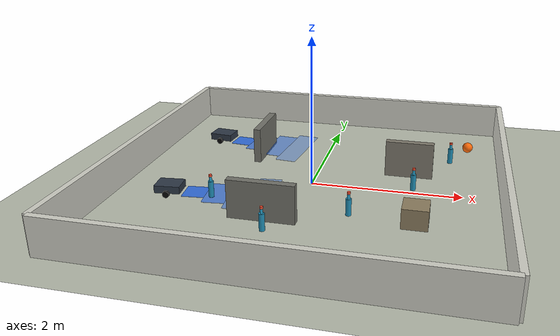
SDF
<?xml version="1.0" ?>
<sdf version="1.6">
  <world name="lightweight_targets">
    <plugin name="gazebo_ros_init" filename="libgazebo_ros_init.so"/>
    <plugin name="gazebo_ros_factory" filename="libgazebo_ros_factory.so"/>

    <physics name="fast_ode" type="ode">
      <max_step_size>0.004</max_step_size>
      <real_time_update_rate>250</real_time_update_rate>
    </physics>

    <scene>
      <ambient>0.72 0.72 0.72 1</ambient>
      <background>0.78 0.84 0.88 1</background>
      <shadows>false</shadows>
    </scene>

    <gui fullscreen="0">
      <!-- Default Gazebo view: overhead map-style camera for touchpad-friendly inspection. -->
      <camera name="user_camera">
        <pose>0 0 8 0 1.570796 0</pose>
        <view_controller>orbit</view_controller>
        <projection_type>orthographic</projection_type>
      </camera>
    </gui>

    <light name="sun" type="directional">
      <pose>0 0 5 0 0 0</pose>
      <diffuse>0.9 0.9 0.85 1</diffuse>
      <specular>0.1 0.1 0.1 1</specular>
      <direction>-0.5 0.2 -1.0</direction>
    </light>

    <model name="matte_floor">
      <static>true</static>
      <link name="link">
        <collision name="collision">
          <geometry>
            <plane>
              <normal>0 0 1</normal>
              <size>8 6</size>
            </plane>
          </geometry>
        </collision>
        <visual name="visual">
          <geometry>
            <plane>
              <normal>0 0 1</normal>
              <size>8 6</size>
            </plane>
          </geometry>
          <material>
            <ambient>0.72 0.74 0.68 1</ambient>
            <diffuse>0.72 0.74 0.68 1</diffuse>
          </material>
        </visual>
      </link>
    </model>

    <model name="north_wall">
      <static>true</static>
      <pose>0 2.5 0.25 0 0 0</pose>
      <link name="link">
        <collision name="collision">
          <geometry><box><size>5.0 0.08 0.5</size></box></geometry>
        </collision>
        <visual name="visual">
          <geometry><box><size>5.0 0.08 0.5</size></box></geometry>
          <material><ambient>0.82 0.82 0.78 1</ambient><diffuse>0.82 0.82 0.78 1</diffuse></material>
        </visual>
      </link>
    </model>

    <model name="south_wall">
      <static>true</static>
      <pose>0 -2.5 0.25 0 0 0</pose>
      <link name="link">
        <collision name="collision">
          <geometry><box><size>5.0 0.08 0.5</size></box></geometry>
        </collision>
        <visual name="visual">
          <geometry><box><size>5.0 0.08 0.5</size></box></geometry>
          <material><ambient>0.82 0.82 0.78 1</ambient><diffuse>0.82 0.82 0.78 1</diffuse></material>
        </visual>
      </link>
    </model>

    <model name="east_wall">
      <static>true</static>
      <pose>2.5 0 0.25 0 0 0</pose>
      <link name="link">
        <collision name="collision">
          <geometry><box><size>0.08 5.0 0.5</size></box></geometry>
        </collision>
        <visual name="visual">
          <geometry><box><size>0.08 5.0 0.5</size></box></geometry>
          <material><ambient>0.82 0.82 0.78 1</ambient><diffuse>0.82 0.82 0.78 1</diffuse></material>
        </visual>
      </link>
    </model>

    <model name="west_wall">
      <static>true</static>
      <pose>-2.5 0 0.25 0 0 0</pose>
      <link name="link">
        <collision name="collision">
          <geometry><box><size>0.08 5.0 0.5</size></box></geometry>
        </collision>
        <visual name="visual">
          <geometry><box><size>0.08 5.0 0.5</size></box></geometry>
          <material><ambient>0.82 0.82 0.78 1</ambient><diffuse>0.82 0.82 0.78 1</diffuse></material>
        </visual>
      </link>
    </model>

    <model name="obstacle_shelf_1">
      <static>true</static>
      <pose>-0.95 0.95 0.25 0 0 0</pose>
      <link name="link">
        <collision name="collision">
          <geometry><box><size>0.10 0.80 0.5</size></box></geometry>
        </collision>
        <visual name="visual">
          <geometry><box><size>0.10 0.80 0.5</size></box></geometry>
          <material><ambient>0.45 0.45 0.42 1</ambient><diffuse>0.45 0.45 0.42 1</diffuse></material>
        </visual>
      </link>
    </model>

    <model name="obstacle_shelf_2">
      <static>true</static>
      <pose>-0.35 -1.15 0.25 0 0 0</pose>
      <link name="link">
        <collision name="collision">
          <geometry><box><size>0.85 0.10 0.5</size></box></geometry>
        </collision>
        <visual name="visual">
          <geometry><box><size>0.85 0.10 0.5</size></box></geometry>
          <material><ambient>0.45 0.45 0.42 1</ambient><diffuse>0.45 0.45 0.42 1</diffuse></material>
        </visual>
      </link>
    </model>

    <model name="obstacle_counter">
      <static>true</static>
      <pose>1.25 0.55 0.25 0 0 0</pose>
      <link name="link">
        <collision name="collision">
          <geometry><box><size>0.65 0.10 0.5</size></box></geometry>
        </collision>
        <visual name="visual">
          <geometry><box><size>0.65 0.10 0.5</size></box></geometry>
          <material><ambient>0.50 0.48 0.43 1</ambient><diffuse>0.50 0.48 0.43 1</diffuse></material>
        </visual>
      </link>
    </model>

    <model name="obstacle_low_box">
      <static>true</static>
      <pose>1.45 -0.85 0.13 0 0 0</pose>
      <link name="link">
        <collision name="collision">
          <geometry><box><size>0.32 0.32 0.26</size></box></geometry>
        </collision>
        <visual name="visual">
          <geometry><box><size>0.32 0.32 0.26</size></box></geometry>
          <material><ambient>0.56 0.50 0.38 1</ambient><diffuse>0.56 0.50 0.38 1</diffuse></material>
        </visual>
      </link>
    </model>

    <model name="sports_ball_target">
      <static>true</static>
      <pose>2.05 1.65 0.075 0 0 0</pose>
      <link name="ball">
        <collision name="collision">
          <geometry><sphere><radius>0.075</radius></sphere></geometry>
        </collision>
        <collision name="lidar_collision">
          <pose>0 0 0.105 0 0 0</pose>
          <geometry><sphere><radius>0.11</radius></sphere></geometry>
        </collision>
        <visual name="visual">
          <geometry><sphere><radius>0.075</radius></sphere></geometry>
          <material><ambient>1.0 0.42 0.04 1</ambient><diffuse>1.0 0.42 0.04 1</diffuse></material>
        </visual>
      </link>
    </model>

    <model name="heuristic_bottle_1">
      <static>true</static>
      <pose>-1.15 -0.75 0 0 0 0</pose>
      <link name="bottle">
        <collision name="body_collision">
          <pose>0 0 0.135 0 0 0</pose>
          <geometry><cylinder><radius>0.035</radius><length>0.22</length></cylinder></geometry>
        </collision>
        <collision name="neck_collision">
          <pose>0 0 0.275 0 0 0</pose>
          <geometry><cylinder><radius>0.017</radius><length>0.06</length></cylinder></geometry>
        </collision>
        <visual name="body_visual">
          <pose>0 0 0.135 0 0 0</pose>
          <geometry><cylinder><radius>0.035</radius><length>0.22</length></cylinder></geometry>
          <material><ambient>0.12 0.55 0.70 1</ambient><diffuse>0.12 0.55 0.70 1</diffuse></material>
        </visual>
        <visual name="neck_visual">
          <pose>0 0 0.275 0 0 0</pose>
          <geometry><cylinder><radius>0.017</radius><length>0.06</length></cylinder></geometry>
          <material><ambient>0.15 0.62 0.78 1</ambient><diffuse>0.15 0.62 0.78 1</diffuse></material>
        </visual>
        <visual name="cap_visual">
          <pose>0 0 0.32 0 0 0</pose>
          <geometry><cylinder><radius>0.020</radius><length>0.03</length></cylinder></geometry>
          <material><ambient>0.95 0.3 0.18 1</ambient><diffuse>0.95 0.3 0.18 1</diffuse></material>
        </visual>
      </link>
    </model>

    <model name="heuristic_bottle_2">
      <static>true</static>
      <pose>-0.25 -1.45 0 0 0 0.2</pose>
      <link name="bottle">
        <collision name="body_collision">
          <pose>0 0 0.135 0 0 0</pose>
          <geometry><cylinder><radius>0.035</radius><length>0.22</length></cylinder></geometry>
        </collision>
        <collision name="neck_collision">
          <pose>0 0 0.275 0 0 0</pose>
          <geometry><cylinder><radius>0.017</radius><length>0.06</length></cylinder></geometry>
        </collision>
        <visual name="body_visual">
          <pose>0 0 0.135 0 0 0</pose>
          <geometry><cylinder><radius>0.035</radius><length>0.22</length></cylinder></geometry>
          <material><ambient>0.12 0.55 0.70 1</ambient><diffuse>0.12 0.55 0.70 1</diffuse></material>
        </visual>
        <visual name="neck_visual">
          <pose>0 0 0.275 0 0 0</pose>
          <geometry><cylinder><radius>0.017</radius><length>0.06</length></cylinder></geometry>
          <material><ambient>0.15 0.62 0.78 1</ambient><diffuse>0.15 0.62 0.78 1</diffuse></material>
        </visual>
        <visual name="cap_visual">
          <pose>0 0 0.32 0 0 0</pose>
          <geometry><cylinder><radius>0.020</radius><length>0.03</length></cylinder></geometry>
          <material><ambient>0.95 0.3 0.18 1</ambient><diffuse>0.95 0.3 0.18 1</diffuse></material>
        </visual>
      </link>
    </model>

    <model name="heuristic_bottle_3">
      <static>true</static>
      <pose>0.65 -0.85 0 0 0 -0.25</pose>
      <link name="bottle">
        <collision name="body_collision">
          <pose>0 0 0.135 0 0 0</pose>
          <geometry><cylinder><radius>0.035</radius><length>0.22</length></cylinder></geometry>
        </collision>
        <collision name="neck_collision">
          <pose>0 0 0.275 0 0 0</pose>
          <geometry><cylinder><radius>0.017</radius><length>0.06</length></cylinder></geometry>
        </collision>
        <visual name="body_visual">
          <pose>0 0 0.135 0 0 0</pose>
          <geometry><cylinder><radius>0.035</radius><length>0.22</length></cylinder></geometry>
          <material><ambient>0.12 0.55 0.70 1</ambient><diffuse>0.12 0.55 0.70 1</diffuse></material>
        </visual>
        <visual name="neck_visual">
          <pose>0 0 0.275 0 0 0</pose>
          <geometry><cylinder><radius>0.017</radius><length>0.06</length></cylinder></geometry>
          <material><ambient>0.15 0.62 0.78 1</ambient><diffuse>0.15 0.62 0.78 1</diffuse></material>
        </visual>
        <visual name="cap_visual">
          <pose>0 0 0.32 0 0 0</pose>
          <geometry><cylinder><radius>0.020</radius><length>0.03</length></cylinder></geometry>
          <material><ambient>0.95 0.3 0.18 1</ambient><diffuse>0.95 0.3 0.18 1</diffuse></material>
        </visual>
      </link>
    </model>

    <model name="heuristic_bottle_4">
      <static>true</static>
      <pose>1.35 0.05 0 0 0 0.35</pose>
      <link name="bottle">
        <collision name="body_collision">
          <pose>0 0 0.135 0 0 0</pose>
          <geometry><cylinder><radius>0.035</radius><length>0.22</length></cylinder></geometry>
        </collision>
        <collision name="neck_collision">
          <pose>0 0 0.275 0 0 0</pose>
          <geometry><cylinder><radius>0.017</radius><length>0.06</length></cylinder></geometry>
        </collision>
        <visual name="body_visual">
          <pose>0 0 0.135 0 0 0</pose>
          <geometry><cylinder><radius>0.035</radius><length>0.22</length></cylinder></geometry>
          <material><ambient>0.12 0.55 0.70 1</ambient><diffuse>0.12 0.55 0.70 1</diffuse></material>
        </visual>
        <visual name="neck_visual">
          <pose>0 0 0.275 0 0 0</pose>
          <geometry><cylinder><radius>0.017</radius><length>0.06</length></cylinder></geometry>
          <material><ambient>0.15 0.62 0.78 1</ambient><diffuse>0.15 0.62 0.78 1</diffuse></material>
        </visual>
        <visual name="cap_visual">
          <pose>0 0 0.32 0 0 0</pose>
          <geometry><cylinder><radius>0.020</radius><length>0.03</length></cylinder></geometry>
          <material><ambient>0.95 0.3 0.18 1</ambient><diffuse>0.95 0.3 0.18 1</diffuse></material>
        </visual>
      </link>
    </model>

    <model name="heuristic_bottle_5">
      <static>true</static>
      <pose>1.8 1.1 0 0 0 0</pose>
      <link name="bottle">
        <collision name="body_collision">
          <pose>0 0 0.135 0 0 0</pose>
          <geometry><cylinder><radius>0.035</radius><length>0.22</length></cylinder></geometry>
        </collision>
        <collision name="neck_collision">
          <pose>0 0 0.275 0 0 0</pose>
          <geometry><cylinder><radius>0.017</radius><length>0.06</length></cylinder></geometry>
        </collision>
        <visual name="body_visual">
          <pose>0 0 0.135 0 0 0</pose>
          <geometry><cylinder><radius>0.035</radius><length>0.22</length></cylinder></geometry>
          <material><ambient>0.12 0.55 0.70 1</ambient><diffuse>0.12 0.55 0.70 1</diffuse></material>
        </visual>
        <visual name="neck_visual">
          <pose>0 0 0.275 0 0 0</pose>
          <geometry><cylinder><radius>0.017</radius><length>0.06</length></cylinder></geometry>
          <material><ambient>0.15 0.62 0.78 1</ambient><diffuse>0.15 0.62 0.78 1</diffuse></material>
        </visual>
        <visual name="cap_visual">
          <pose>0 0 0.32 0 0 0</pose>
          <geometry><cylinder><radius>0.020</radius><length>0.03</length></cylinder></geometry>
          <material><ambient>0.95 0.3 0.18 1</ambient><diffuse>0.95 0.3 0.18 1</diffuse></material>
        </visual>
      </link>
    </model>

    <!-- Robot 1 keeps the original demo path, but its ROS names stay out of everybody else's way -->
    <model name="cv_boxbot_robot1">
      <pose>-1.75 -0.70 0 0 0 0.10</pose>

      <link name="base_link">
        <inertial>
          <mass>2.0</mass>
          <inertia>
            <ixx>0.02</ixx><ixy>0</ixy><ixz>0</ixz>
            <iyy>0.02</iyy><iyz>0</iyz><izz>0.03</izz>
          </inertia>
        </inertial>
        <collision name="base_collision">
          <pose>0 0 0.09 0 0 0</pose>
          <geometry><box><size>0.34 0.26 0.10</size></box></geometry>
        </collision>
        <visual name="base_visual">
          <pose>0 0 0.09 0 0 0</pose>
          <geometry><box><size>0.34 0.26 0.10</size></box></geometry>
          <material><ambient>0.18 0.22 0.28 1</ambient><diffuse>0.18 0.22 0.28 1</diffuse></material>
        </visual>
        <visual name="camera_view_near">
          <!-- Approximate camera field of view. Layered panels create a blue fade from above. -->
          <pose>0.35 0 0.026 0 0 0</pose>
          <geometry><box><size>0.30 0.30 0.010</size></box></geometry>
          <material><ambient>0.03 0.35 1.0 0.70</ambient><diffuse>0.03 0.35 1.0 0.70</diffuse><emissive>0.00 0.10 0.25 1</emissive></material>
          <transparency>0.25</transparency>
          <cast_shadows>false</cast_shadows>
        </visual>
        <visual name="camera_view_mid_1">
          <pose>0.65 0 0.024 0 0 0</pose>
          <geometry><box><size>0.30 0.55 0.010</size></box></geometry>
          <material><ambient>0.03 0.35 1.0 0.55</ambient><diffuse>0.03 0.35 1.0 0.55</diffuse><emissive>0.00 0.08 0.20 1</emissive></material>
          <transparency>0.38</transparency>
          <cast_shadows>false</cast_shadows>
        </visual>
        <visual name="camera_view_mid_2">
          <pose>0.95 0 0.022 0 0 0</pose>
          <geometry><box><size>0.30 0.80 0.010</size></box></geometry>
          <material><ambient>0.03 0.35 1.0 0.42</ambient><diffuse>0.03 0.35 1.0 0.42</diffuse><emissive>0.00 0.06 0.16 1</emissive></material>
          <transparency>0.52</transparency>
          <cast_shadows>false</cast_shadows>
        </visual>
        <visual name="camera_view_far">
          <pose>1.25 0 0.020 0 0 0</pose>
          <geometry><box><size>0.30 1.05 0.010</size></box></geometry>
          <material><ambient>0.03 0.35 1.0 0.30</ambient><diffuse>0.03 0.35 1.0 0.30</diffuse><emissive>0.00 0.04 0.12 1</emissive></material>
          <transparency>0.68</transparency>
          <cast_shadows>false</cast_shadows>
        </visual>
      </link>

      <link name="left_wheel">
        <pose>0 0.16 0.045 -1.5708 0 0</pose>
        <inertial>
          <mass>0.15</mass>
          <inertia>
            <ixx>0.001</ixx><ixy>0</ixy><ixz>0</ixz>
            <iyy>0.001</iyy><iyz>0</iyz><izz>0.001</izz>
          </inertia>
        </inertial>
        <collision name="collision">
          <geometry><cylinder><radius>0.045</radius><length>0.035</length></cylinder></geometry>
          <surface>
            <friction><ode><mu>1.0</mu><mu2>1.0</mu2></ode></friction>
          </surface>
        </collision>
        <visual name="visual">
          <geometry><cylinder><radius>0.045</radius><length>0.035</length></cylinder></geometry>
          <material><ambient>0.03 0.03 0.03 1</ambient><diffuse>0.03 0.03 0.03 1</diffuse></material>
        </visual>
      </link>

      <link name="right_wheel">
        <pose>0 -0.16 0.045 -1.5708 0 0</pose>
        <inertial>
          <mass>0.15</mass>
          <inertia>
            <ixx>0.001</ixx><ixy>0</ixy><ixz>0</ixz>
            <iyy>0.001</iyy><iyz>0</iyz><izz>0.001</izz>
          </inertia>
        </inertial>
        <collision name="collision">
          <geometry><cylinder><radius>0.045</radius><length>0.035</length></cylinder></geometry>
          <surface>
            <friction><ode><mu>1.0</mu><mu2>1.0</mu2></ode></friction>
          </surface>
        </collision>
        <visual name="visual">
          <geometry><cylinder><radius>0.045</radius><length>0.035</length></cylinder></geometry>
          <material><ambient>0.03 0.03 0.03 1</ambient><diffuse>0.03 0.03 0.03 1</diffuse></material>
        </visual>
      </link>

      <link name="caster">
        <pose>-0.14 0 0.025 0 0 0</pose>
        <collision name="collision">
          <geometry><sphere><radius>0.025</radius></sphere></geometry>
        </collision>
        <visual name="visual">
          <geometry><sphere><radius>0.025</radius></sphere></geometry>
          <material><ambient>0.03 0.03 0.03 1</ambient><diffuse>0.03 0.03 0.03 1</diffuse></material>
        </visual>
      </link>

      <link name="base_scan">
        <pose>0.05 0 0.18 0 0 0</pose>
        <sensor name="front_laser" type="ray">
          <always_on>true</always_on>
          <visualize>false</visualize>
          <update_rate>5</update_rate>
          <ray>
            <scan>
              <horizontal>
                <samples>180</samples>
                <resolution>1</resolution>
                <min_angle>-3.14159</min_angle>
                <max_angle>3.14159</max_angle>
              </horizontal>
            </scan>
            <range><min>0.12</min><max>5.0</max><resolution>0.02</resolution></range>
          </ray>
          <plugin name="laser_driver" filename="libgazebo_ros_ray_sensor.so">
            <ros>
              <namespace>/robot1</namespace>
              <argument>~/out:=scan</argument>
            </ros>
            <output_type>sensor_msgs/LaserScan</output_type>
            <frame_name>robot1/base_scan</frame_name>
          </plugin>
        </sensor>
      </link>

      <link name="camera_link">
        <pose>0.19 0 0.17 0 -0.261799 0</pose>
        <sensor name="camera" type="camera">
          <always_on>true</always_on>
          <visualize>true</visualize>
          <update_rate>10</update_rate>
          <camera>
            <horizontal_fov>1.05</horizontal_fov>
            <image>
              <width>320</width>
              <height>240</height>
              <format>R8G8B8</format>
            </image>
            <clip><near>0.03</near><far>10.0</far></clip>
          </camera>
          <plugin name="camera_driver" filename="libgazebo_ros_camera.so">
            <ros><namespace>/robot1</namespace></ros>
            <camera_name>camera</camera_name>
            <frame_name>robot1/camera_link</frame_name>
          </plugin>
        </sensor>
      </link>

      <joint name="left_wheel_joint" type="revolute">
        <parent>base_link</parent>
        <child>left_wheel</child>
        <axis><xyz>0 0 1</xyz></axis>
      </joint>

      <joint name="right_wheel_joint" type="revolute">
        <parent>base_link</parent>
        <child>right_wheel</child>
        <axis><xyz>0 0 1</xyz></axis>
      </joint>

      <joint name="caster_joint" type="fixed">
        <parent>base_link</parent>
        <child>caster</child>
      </joint>

      <joint name="scan_joint" type="fixed">
        <parent>base_link</parent>
        <child>base_scan</child>
      </joint>

      <joint name="camera_joint" type="fixed">
        <parent>base_link</parent>
        <child>camera_link</child>
      </joint>

      <plugin name="diff_drive" filename="libgazebo_ros_diff_drive.so">
        <ros><namespace>/robot1</namespace></ros>
        <update_rate>30</update_rate>
        <left_joint>left_wheel_joint</left_joint>
        <right_joint>right_wheel_joint</right_joint>
        <wheel_separation>0.32</wheel_separation>
        <wheel_diameter>0.09</wheel_diameter>
        <max_wheel_torque>8</max_wheel_torque>
        <max_wheel_acceleration>2.0</max_wheel_acceleration>
        <command_topic>cmd_vel</command_topic>
        <publish_odom>true</publish_odom>
        <publish_odom_tf>true</publish_odom_tf>
        <publish_wheel_tf>false</publish_wheel_tf>
        <odometry_topic>odom</odometry_topic>
        <odometry_frame>robot1/odom</odometry_frame>
        <robot_base_frame>robot1/base_link</robot_base_frame>
      </plugin>
    </model>

    <!--robot 2 has the same sensor stack, offset enough that teleop does not feel cramped-->
    <model name="cv_boxbot_robot2">
      <pose>-1.75 1.30 0 0 0 -0.10</pose>

      <link name="base_link">
        <inertial>
          <mass>2.0</mass>
          <inertia>
            <ixx>0.02</ixx><ixy>0</ixy><ixz>0</ixz>
            <iyy>0.02</iyy><iyz>0</iyz><izz>0.03</izz>
          </inertia>
        </inertial>
        <collision name="base_collision">
          <pose>0 0 0.09 0 0 0</pose>
          <geometry><box><size>0.34 0.26 0.10</size></box></geometry>
        </collision>
        <visual name="base_visual">
          <pose>0 0 0.09 0 0 0</pose>
          <geometry><box><size>0.34 0.26 0.10</size></box></geometry>
          <material><ambient>0.18 0.22 0.28 1</ambient><diffuse>0.18 0.22 0.28 1</diffuse></material>
        </visual>
        <visual name="camera_view_near">
          <!-- Approximate camera field of view. Layered panels create a blue fade from above. -->
          <pose>0.35 0 0.026 0 0 0</pose>
          <geometry><box><size>0.30 0.30 0.010</size></box></geometry>
          <material><ambient>0.03 0.35 1.0 0.70</ambient><diffuse>0.03 0.35 1.0 0.70</diffuse><emissive>0.00 0.10 0.25 1</emissive></material>
          <transparency>0.25</transparency>
          <cast_shadows>false</cast_shadows>
        </visual>
        <visual name="camera_view_mid_1">
          <pose>0.65 0 0.024 0 0 0</pose>
          <geometry><box><size>0.30 0.55 0.010</size></box></geometry>
          <material><ambient>0.03 0.35 1.0 0.55</ambient><diffuse>0.03 0.35 1.0 0.55</diffuse><emissive>0.00 0.08 0.20 1</emissive></material>
          <transparency>0.38</transparency>
          <cast_shadows>false</cast_shadows>
        </visual>
        <visual name="camera_view_mid_2">
          <pose>0.95 0 0.022 0 0 0</pose>
          <geometry><box><size>0.30 0.80 0.010</size></box></geometry>
          <material><ambient>0.03 0.35 1.0 0.42</ambient><diffuse>0.03 0.35 1.0 0.42</diffuse><emissive>0.00 0.06 0.16 1</emissive></material>
          <transparency>0.52</transparency>
          <cast_shadows>false</cast_shadows>
        </visual>
        <visual name="camera_view_far">
          <pose>1.25 0 0.020 0 0 0</pose>
          <geometry><box><size>0.30 1.05 0.010</size></box></geometry>
          <material><ambient>0.03 0.35 1.0 0.30</ambient><diffuse>0.03 0.35 1.0 0.30</diffuse><emissive>0.00 0.04 0.12 1</emissive></material>
          <transparency>0.68</transparency>
          <cast_shadows>false</cast_shadows>
        </visual>
      </link>

      <link name="left_wheel">
        <pose>0 0.16 0.045 -1.5708 0 0</pose>
        <inertial>
          <mass>0.15</mass>
          <inertia>
            <ixx>0.001</ixx><ixy>0</ixy><ixz>0</ixz>
            <iyy>0.001</iyy><iyz>0</iyz><izz>0.001</izz>
          </inertia>
        </inertial>
        <collision name="collision">
          <geometry><cylinder><radius>0.045</radius><length>0.035</length></cylinder></geometry>
          <surface>
            <friction><ode><mu>1.0</mu><mu2>1.0</mu2></ode></friction>
          </surface>
        </collision>
        <visual name="visual">
          <geometry><cylinder><radius>0.045</radius><length>0.035</length></cylinder></geometry>
          <material><ambient>0.03 0.03 0.03 1</ambient><diffuse>0.03 0.03 0.03 1</diffuse></material>
        </visual>
      </link>

      <link name="right_wheel">
        <pose>0 -0.16 0.045 -1.5708 0 0</pose>
        <inertial>
          <mass>0.15</mass>
          <inertia>
            <ixx>0.001</ixx><ixy>0</ixy><ixz>0</ixz>
            <iyy>0.001</iyy><iyz>0</iyz><izz>0.001</izz>
          </inertia>
        </inertial>
        <collision name="collision">
          <geometry><cylinder><radius>0.045</radius><length>0.035</length></cylinder></geometry>
          <surface>
            <friction><ode><mu>1.0</mu><mu2>1.0</mu2></ode></friction>
          </surface>
        </collision>
        <visual name="visual">
          <geometry><cylinder><radius>0.045</radius><length>0.035</length></cylinder></geometry>
          <material><ambient>0.03 0.03 0.03 1</ambient><diffuse>0.03 0.03 0.03 1</diffuse></material>
        </visual>
      </link>

      <link name="caster">
        <pose>-0.14 0 0.025 0 0 0</pose>
        <collision name="collision">
          <geometry><sphere><radius>0.025</radius></sphere></geometry>
        </collision>
        <visual name="visual">
          <geometry><sphere><radius>0.025</radius></sphere></geometry>
          <material><ambient>0.03 0.03 0.03 1</ambient><diffuse>0.03 0.03 0.03 1</diffuse></material>
        </visual>
      </link>

      <link name="base_scan">
        <pose>0.05 0 0.18 0 0 0</pose>
        <sensor name="front_laser" type="ray">
          <always_on>true</always_on>
          <visualize>false</visualize>
          <update_rate>5</update_rate>
          <ray>
            <scan>
              <horizontal>
                <samples>180</samples>
                <resolution>1</resolution>
                <min_angle>-3.14159</min_angle>
                <max_angle>3.14159</max_angle>
              </horizontal>
            </scan>
            <range><min>0.12</min><max>5.0</max><resolution>0.02</resolution></range>
          </ray>
          <plugin name="laser_driver" filename="libgazebo_ros_ray_sensor.so">
            <ros>
              <namespace>/robot2</namespace>
              <argument>~/out:=scan</argument>
            </ros>
            <output_type>sensor_msgs/LaserScan</output_type>
            <frame_name>robot2/base_scan</frame_name>
          </plugin>
        </sensor>
      </link>

      <link name="camera_link">
        <pose>0.19 0 0.17 0 -0.261799 0</pose>
        <sensor name="camera" type="camera">
          <always_on>true</always_on>
          <visualize>true</visualize>
          <update_rate>10</update_rate>
          <camera>
            <horizontal_fov>1.05</horizontal_fov>
            <image>
              <width>320</width>
              <height>240</height>
              <format>R8G8B8</format>
            </image>
            <clip><near>0.03</near><far>10.0</far></clip>
          </camera>
          <plugin name="camera_driver" filename="libgazebo_ros_camera.so">
            <ros><namespace>/robot2</namespace></ros>
            <camera_name>camera</camera_name>
            <frame_name>robot2/camera_link</frame_name>
          </plugin>
        </sensor>
      </link>

      <joint name="left_wheel_joint" type="revolute">
        <parent>base_link</parent>
        <child>left_wheel</child>
        <axis><xyz>0 0 1</xyz></axis>
      </joint>

      <joint name="right_wheel_joint" type="revolute">
        <parent>base_link</parent>
        <child>right_wheel</child>
        <axis><xyz>0 0 1</xyz></axis>
      </joint>

      <joint name="caster_joint" type="fixed">
        <parent>base_link</parent>
        <child>caster</child>
      </joint>

      <joint name="scan_joint" type="fixed">
        <parent>base_link</parent>
        <child>base_scan</child>
      </joint>

      <joint name="camera_joint" type="fixed">
        <parent>base_link</parent>
        <child>camera_link</child>
      </joint>

      <plugin name="diff_drive" filename="libgazebo_ros_diff_drive.so">
        <ros><namespace>/robot2</namespace></ros>
        <update_rate>30</update_rate>
        <left_joint>left_wheel_joint</left_joint>
        <right_joint>right_wheel_joint</right_joint>
        <wheel_separation>0.32</wheel_separation>
        <wheel_diameter>0.09</wheel_diameter>
        <max_wheel_torque>8</max_wheel_torque>
        <max_wheel_acceleration>2.0</max_wheel_acceleration>
        <command_topic>cmd_vel</command_topic>
        <publish_odom>true</publish_odom>
        <publish_odom_tf>true</publish_odom_tf>
        <publish_wheel_tf>false</publish_wheel_tf>
        <odometry_topic>odom</odometry_topic>
        <odometry_frame>robot2/odom</odometry_frame>
        <robot_base_frame>robot2/base_link</robot_base_frame>
      </plugin>
    </model>
  </world>
</sdf>
